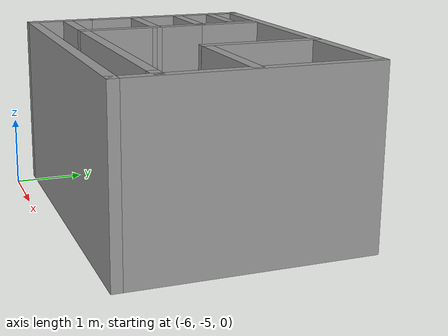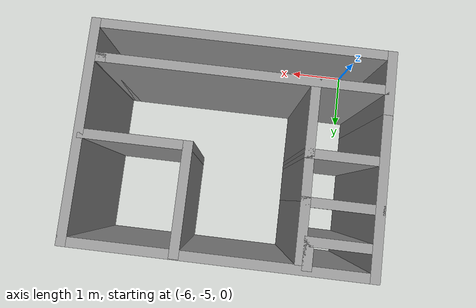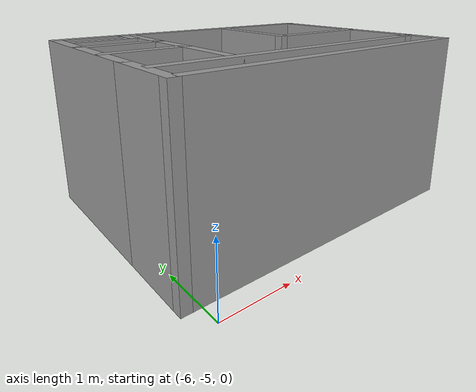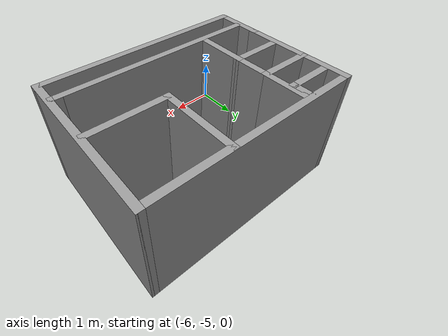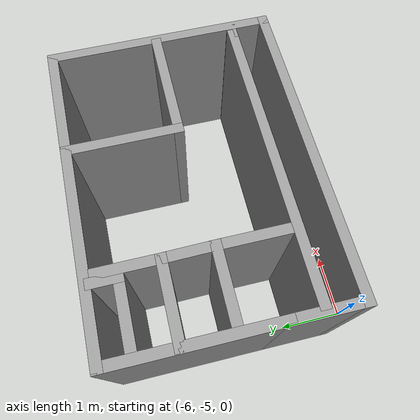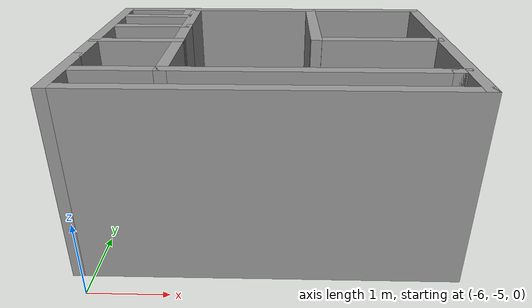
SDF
<?xml version='1.0'?>
<sdf version='1.6'>
  <model name='gusrud_build'>
    <pose frame=''>-3.89 -2.955 0 0 -0 0</pose>
    <link name='Wall_10'>
      <collision name='Wall_10_Collision'>
        <geometry>
          <box>
            <size>3.5 0.15 2.5</size>
          </box>
        </geometry>
        <pose frame=''>0 0 1.25 0 -0 0</pose>
      </collision>
      <visual name='Wall_10_Visual'>
        <pose frame=''>0 0 1.25 0 -0 0</pose>
        <geometry>
          <box>
            <size>3.5 0.15 2.5</size>
          </box>
        </geometry>
        <material>
          <script>
            <uri>file://media/materials/scripts/gazebo.material</uri>
            <name>Gazebo/Grey</name>
          </script>
          <ambient>1 1 1 1</ambient>
        </material>
        <meta>
          <layer>0</layer>
        </meta>
      </visual>
      <pose frame=''>2.3 -0 0 0 -0 -1.5708</pose>
    </link>
    <link name='Wall_11'>
      <collision name='Wall_11_Collision'>
        <geometry>
          <box>
            <size>4.75 0.15 2.5</size>
          </box>
        </geometry>
        <pose frame=''>0 0 1.25 0 -0 0</pose>
      </collision>
      <visual name='Wall_11_Visual'>
        <pose frame=''>0 0 1.25 0 -0 0</pose>
        <geometry>
          <box>
            <size>4.75 0.15 2.5</size>
          </box>
        </geometry>
        <material>
          <script>
            <uri>file://media/materials/scripts/gazebo.material</uri>
            <name>Gazebo/Grey</name>
          </script>
          <ambient>1 1 1 1</ambient>
        </material>
        <meta>
          <layer>0</layer>
        </meta>
      </visual>
      <pose frame=''>0 -1.675 0 0 -0 3.14159</pose>
    </link>
    <link name='Wall_12'>
      <collision name='Wall_12_Collision'>
        <geometry>
          <box>
            <size>1.15 0.15 2.5</size>
          </box>
        </geometry>
        <pose frame=''>0 0 1.25 0 -0 0</pose>
      </collision>
      <visual name='Wall_12_Visual'>
        <pose frame=''>0 0 1.25 0 -0 0</pose>
        <geometry>
          <box>
            <size>1.15 0.15 2.5</size>
          </box>
        </geometry>
        <material>
          <script>
            <uri>file://media/materials/scripts/gazebo.material</uri>
            <name>Gazebo/Grey</name>
          </script>
          <ambient>1 1 1 1</ambient>
        </material>
        <meta>
          <layer>0</layer>
        </meta>
      </visual>
      <pose frame=''>-2.3 -1.175 0 0 -0 1.5708</pose>
    </link>
    <link name='Wall_14'>
      <collision name='Wall_14_Collision'>
        <geometry>
          <box>
            <size>0.5 0.15 2.5</size>
          </box>
        </geometry>
        <pose frame=''>0 0 1.25 0 -0 0</pose>
      </collision>
      <visual name='Wall_14_Visual'>
        <pose frame=''>0 0 1.25 0 -0 0</pose>
        <geometry>
          <box>
            <size>0.5 0.15 2.5</size>
          </box>
        </geometry>
        <material>
          <script>
            <uri>file://media/materials/scripts/gazebo.material</uri>
            <name>Gazebo/Grey</name>
          </script>
          <ambient>1 1 1 1</ambient>
        </material>
        <meta>
          <layer>0</layer>
        </meta>
      </visual>
      <pose frame=''>-1.3 1.43 0 0 -0 -1.5708</pose>
    </link>
    <link name='Wall_15'>
      <collision name='Wall_15_Collision'>
        <geometry>
          <box>
            <size>1 0.15 2.5</size>
          </box>
        </geometry>
        <pose frame=''>0 0 1.25 0 -0 0</pose>
      </collision>
      <visual name='Wall_15_Visual'>
        <pose frame=''>0 0 1.25 0 -0 0</pose>
        <geometry>
          <box>
            <size>1 0.15 2.5</size>
          </box>
        </geometry>
        <material>
          <script>
            <uri>file://media/materials/scripts/gazebo.material</uri>
            <name>Gazebo/Grey</name>
          </script>
          <ambient>1 1 1 1</ambient>
        </material>
        <meta>
          <layer>0</layer>
        </meta>
      </visual>
      <pose frame=''>-1.725 1.255 0 0 -0 3.14159</pose>
    </link>
    <link name='Wall_21'>
      <collision name='Wall_21_Collision'>
        <geometry>
          <box>
            <size>1.25 0.15 2.5</size>
          </box>
        </geometry>
        <pose frame=''>0 0 1.25 0 -0 0</pose>
      </collision>
      <visual name='Wall_21_Visual'>
        <pose frame=''>0 0 1.25 0 -0 0</pose>
        <geometry>
          <box>
            <size>1.25 0.15 2.5</size>
          </box>
        </geometry>
        <material>
          <script>
            <uri>file://media/materials/scripts/gazebo.material</uri>
            <name>Gazebo/Grey</name>
          </script>
          <ambient>1 1 1 1</ambient>
        </material>
        <meta>
          <layer>0</layer>
        </meta>
      </visual>
      <pose frame=''>-1.74 0.685 0 0 -0 0</pose>
    </link>
    <link name='Wall_22'>
      <collision name='Wall_22_Collision'>
        <geometry>
          <box>
            <size>1 0.15 2.5</size>
          </box>
        </geometry>
        <pose frame=''>0 0 1.25 0 -0 0</pose>
      </collision>
      <visual name='Wall_22_Visual'>
        <pose frame=''>0 0 1.25 0 -0 0</pose>
        <geometry>
          <box>
            <size>1 0.15 2.5</size>
          </box>
        </geometry>
        <material>
          <script>
            <uri>file://media/materials/scripts/gazebo.material</uri>
            <name>Gazebo/Grey</name>
          </script>
          <ambient>1 1 1 1</ambient>
        </material>
        <meta>
          <layer>0</layer>
        </meta>
      </visual>
      <pose frame=''>-1.19 1.11 0 0 -0 1.5708</pose>
    </link>
    <link name='Wall_26'>
      <collision name='Wall_26_Collision'>
        <geometry>
          <box>
            <size>1.25 0.15 2.5</size>
          </box>
        </geometry>
        <pose frame=''>0 0 1.25 0 -0 0</pose>
      </collision>
      <visual name='Wall_26_Visual'>
        <pose frame=''>0 0 1.25 0 -0 0</pose>
        <geometry>
          <box>
            <size>1.25 0.15 2.5</size>
          </box>
        </geometry>
        <material>
          <script>
            <uri>file://media/materials/scripts/gazebo.material</uri>
            <name>Gazebo/Grey</name>
          </script>
          <ambient>1 1 1 1</ambient>
        </material>
        <meta>
          <layer>0</layer>
        </meta>
      </visual>
      <pose frame=''>-1.73 -0.035 0 0 -0 0</pose>
    </link>
    <link name='Wall_28'>
      <collision name='Wall_28_Collision'>
        <geometry>
          <box>
            <size>0.870069 0.15 2.5</size>
          </box>
        </geometry>
        <pose frame=''>0 0 1.25 0 -0 0</pose>
      </collision>
      <visual name='Wall_28_Visual'>
        <pose frame=''>0 0 1.25 0 -0 0</pose>
        <geometry>
          <box>
            <size>0.870069 0.15 2.5</size>
          </box>
        </geometry>
        <material>
          <script>
            <uri>file://media/materials/scripts/gazebo.material</uri>
            <name>Gazebo/Grey</name>
          </script>
          <ambient>1 1 1 1</ambient>
        </material>
        <meta>
          <layer>0</layer>
        </meta>
      </visual>
      <pose frame=''>-1.185 0.325 0 0 -0 1.58468</pose>
    </link>
    <link name='Wall_30'>
      <collision name='Wall_30_Collision'>
        <geometry>
          <box>
            <size>4.5 0.15 2.5</size>
          </box>
        </geometry>
        <pose frame=''>0 0 1.25 0 -0 0</pose>
      </collision>
      <visual name='Wall_30_Visual'>
        <pose frame=''>0 0 1.25 0 -0 0</pose>
        <geometry>
          <box>
            <size>4.5 0.15 2.5</size>
          </box>
        </geometry>
        <material>
          <script>
            <uri>file://media/materials/scripts/gazebo.material</uri>
            <name>Gazebo/Grey</name>
          </script>
          <ambient>1 1 1 1</ambient>
        </material>
        <meta>
          <layer>0</layer>
        </meta>
      </visual>
      <pose frame=''>-0.035 -1.135 0 0 -0 0</pose>
    </link>
    <link name='Wall_31'>
      <collision name='Wall_31_Collision'>
        <geometry>
          <box>
            <size>0.25 0.15 2.5</size>
          </box>
        </geometry>
        <pose frame=''>0 0 1.25 0 -0 0</pose>
      </collision>
      <visual name='Wall_31_Visual'>
        <pose frame=''>0 0 1.25 0 -0 0</pose>
        <geometry>
          <box>
            <size>0.25 0.15 2.5</size>
          </box>
        </geometry>
        <material>
          <script>
            <uri>file://media/materials/scripts/gazebo.material</uri>
            <name>Gazebo/Grey</name>
          </script>
          <ambient>1 1 1 1</ambient>
        </material>
        <meta>
          <layer>0</layer>
        </meta>
      </visual>
      <pose frame=''>2.19 -1.135 0 0 -0 0</pose>
    </link>
    <link name='Wall_33'>
      <collision name='Wall_33_Collision'>
        <geometry>
          <box>
            <size>1.75 0.15 2.5</size>
          </box>
        </geometry>
        <pose frame=''>0 0 1.25 0 -0 0</pose>
      </collision>
      <visual name='Wall_33_Visual'>
        <pose frame=''>0 0 1.25 0 -0 0</pose>
        <geometry>
          <box>
            <size>1.75 0.15 2.5</size>
          </box>
        </geometry>
        <material>
          <script>
            <uri>file://media/materials/scripts/gazebo.material</uri>
            <name>Gazebo/Grey</name>
          </script>
          <ambient>1 1 1 1</ambient>
        </material>
        <meta>
          <layer>0</layer>
        </meta>
      </visual>
      <pose frame=''>0.64 0.865 0 0 -0 1.5708</pose>
    </link>
    <link name='Wall_35'>
      <collision name='Wall_35_Collision'>
        <geometry>
          <box>
            <size>1.75 0.15 2.5</size>
          </box>
        </geometry>
        <pose frame=''>0 0 1.25 0 -0 0</pose>
      </collision>
      <visual name='Wall_35_Visual'>
        <pose frame=''>0 0 1.25 0 -0 0</pose>
        <geometry>
          <box>
            <size>1.75 0.15 2.5</size>
          </box>
        </geometry>
        <material>
          <script>
            <uri>file://media/materials/scripts/gazebo.material</uri>
            <name>Gazebo/Grey</name>
          </script>
          <ambient>1 1 1 1</ambient>
        </material>
        <meta>
          <layer>0</layer>
        </meta>
      </visual>
      <pose frame=''>1.44 0.065 0 0 -0 0</pose>
    </link>
    <link name='Wall_37'>
      <collision name='Wall_37_Collision'>
        <geometry>
          <box>
            <size>1.25 0.15 2.5</size>
          </box>
        </geometry>
        <pose frame=''>0 0 1.25 0 -0 0</pose>
      </collision>
      <visual name='Wall_37_Visual'>
        <pose frame=''>0 0 1.25 0 -0 0</pose>
        <geometry>
          <box>
            <size>1.25 0.15 2.5</size>
          </box>
        </geometry>
        <material>
          <script>
            <uri>file://media/materials/scripts/gazebo.material</uri>
            <name>Gazebo/Grey</name>
          </script>
          <ambient>1 1 1 1</ambient>
        </material>
        <meta>
          <layer>0</layer>
        </meta>
      </visual>
      <pose frame=''>-1.18 -0.585 0 0 -0 -1.5708</pose>
    </link>
    <link name='Wall_8'>
      <collision name='Wall_8_Collision'>
        <geometry>
          <box>
            <size>2.5 0.15 2.5</size>
          </box>
        </geometry>
        <pose frame=''>0 0 1.25 0 -0 0</pose>
      </collision>
      <visual name='Wall_8_Visual'>
        <pose frame=''>0 0 1.25 0 -0 0</pose>
        <geometry>
          <box>
            <size>2.5 0.15 2.5</size>
          </box>
        </geometry>
        <material>
          <script>
            <uri>file://media/materials/scripts/gazebo.material</uri>
            <name>Gazebo/Grey</name>
          </script>
          <ambient>1 1 1 1</ambient>
        </material>
        <meta>
          <layer>0</layer>
        </meta>
      </visual>
      <pose frame=''>-2.3 0.5 0 0 -0 1.5708</pose>
    </link>
    <link name='Wall_9'>
      <collision name='Wall_9_Collision'>
        <geometry>
          <box>
            <size>4.75 0.15 2.5</size>
          </box>
        </geometry>
        <pose frame=''>0 0 1.25 0 -0 0</pose>
      </collision>
      <visual name='Wall_9_Visual'>
        <pose frame=''>0 0 1.25 0 -0 0</pose>
        <geometry>
          <box>
            <size>4.75 0.15 2.5</size>
          </box>
        </geometry>
        <material>
          <script>
            <uri>file://media/materials/scripts/gazebo.material</uri>
            <name>Gazebo/Grey</name>
          </script>
          <ambient>1 1 1 1</ambient>
        </material>
        <meta>
          <layer>0</layer>
        </meta>
      </visual>
      <pose frame=''>0 1.675 0 0 -0 0</pose>
    </link>
    <static>1</static>
  </model>
</sdf>
